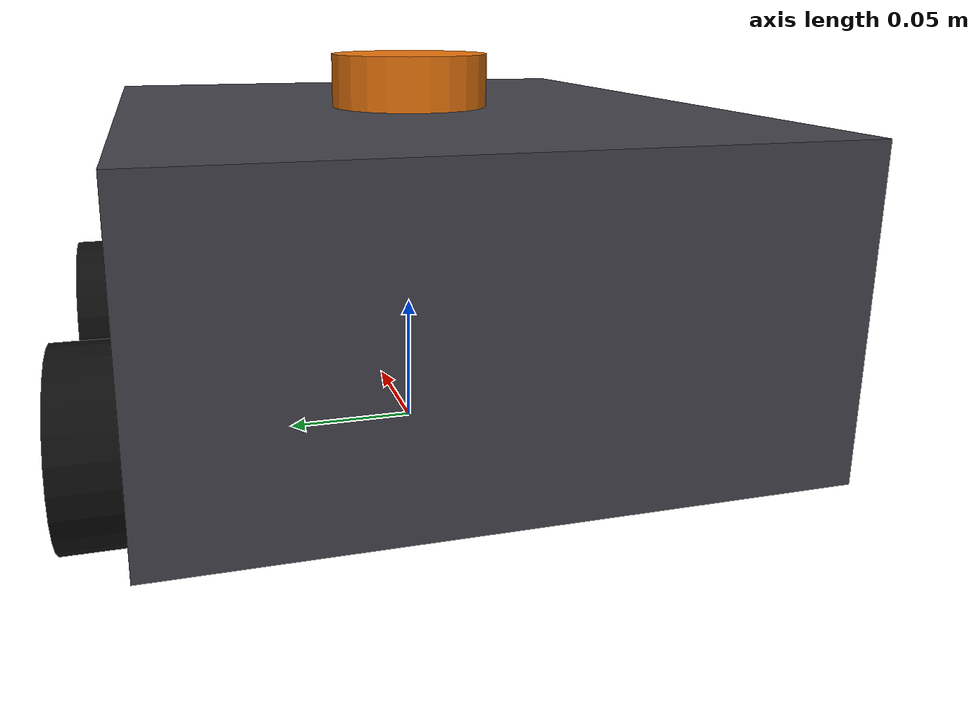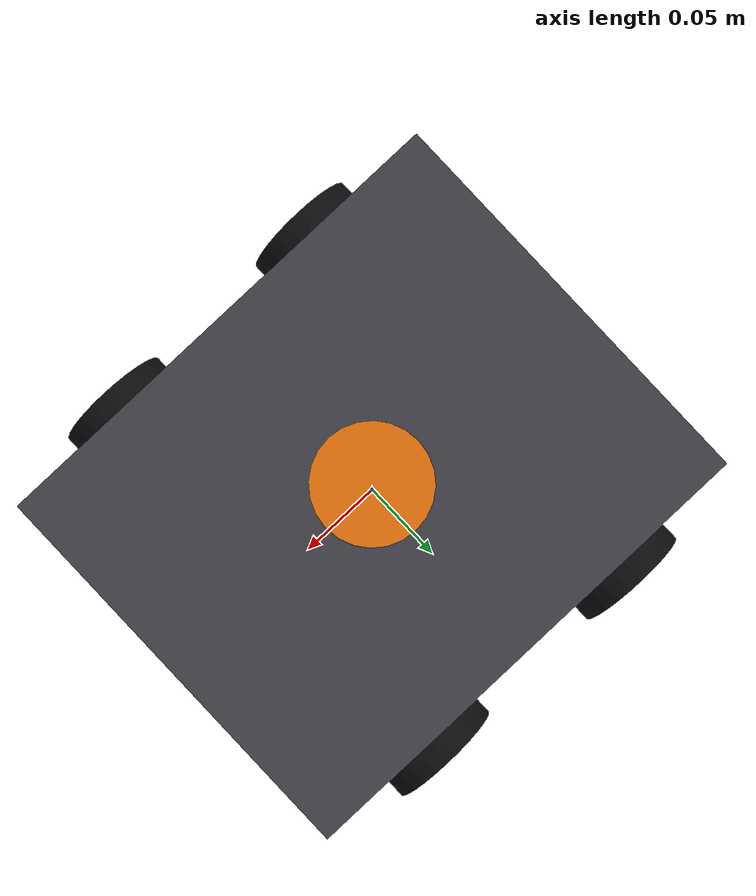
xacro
<?xml version="1.0"?>
<robot name="scout2map" xmlns:xacro="http://www.ros.org/wiki/xacro">

  <!-- ground clearance defines the gap below chassis -->
  <xacro:property name="ground_clearance" value="0.020"/>

  <!-- chassis dimensions -->
  <xacro:property name="chassis_length" value="0.265"/>
  <xacro:property name="chassis_width"  value="0.220"/>
  <!-- chassis height is 110mm to reach 130mm from ground -->
  <xacro:property name="chassis_height" value="0.110"/>
  <xacro:property name="chassis_mass"   value="1.8"/>

  <!-- chassis inertia recalculated for 110mm height -->
  <xacro:property name="chassis_ixx" value="0.009075"/>
  <xacro:property name="chassis_iyy" value="0.012349"/>
  <xacro:property name="chassis_izz" value="0.017794"/>

  <!-- wheel dimensions -->
  <xacro:property name="wheel_radius" value="0.033"/>
  <xacro:property name="wheel_width"  value="0.026"/>
  <xacro:property name="wheel_mass"   value="0.035"/>
  <xacro:property name="track_width"  value="0.240"/>
  <xacro:property name="wheel_base"   value="0.140"/>

  <!-- base_link is now on the ground -->
  <!-- wheel axle height is exactly the wheel radius -->
  <xacro:property name="wheel_axle_z" value="${wheel_radius}"/>

  <!-- wheel inertia -->
  <xacro:property name="wheel_izz_spin" value="0.0000191"/>
  <xacro:property name="wheel_ixx_perp" value="0.0000115"/>

  <!-- sensor offsets relative to the ground -->
  <!-- lidar sits on top of chassis at 130mm from ground -->
  <xacro:property name="lidar_offset_z" value="0.130"/>
  <!-- imu offset includes ground clearance -->
  <xacro:property name="imu_offset_z"   value="0.085"/>

  <!-- rotated using pi to fix orientation -->
  <xacro:property name="lidar_yaw_offset" value="3.14159265"/>

  <!-- materials -->
  <material name="chassis_gray"><color rgba="0.25 0.25 0.28 1.0"/></material>
  <material name="wheel_black"><color rgba="0.05 0.05 0.05 1.0"/></material>
  <material name="lidar_orange"><color rgba="0.90 0.45 0.05 1.0"/></material>
  <material name="imu_red"><color rgba="0.70 0.05 0.05 1.0"/></material>

  <!-- chassis body -->
  <!-- visual and collision are shifted up by ground clearance -->
  <link name="base_link">
    <visual>
      <origin xyz="0 0 ${ground_clearance + chassis_height/2}" rpy="0 0 0"/>
      <geometry><box size="${chassis_length} ${chassis_width} ${chassis_height}"/></geometry>
      <material name="chassis_gray"/>
    </visual>
    <collision>
      <origin xyz="0 0 ${ground_clearance + chassis_height/2}" rpy="0 0 0"/>
      <geometry><box size="${chassis_length} ${chassis_width} ${chassis_height}"/></geometry>
    </collision>
    <inertial>
      <origin xyz="0 0 ${ground_clearance + chassis_height/2}" rpy="0 0 0"/>
      <mass value="${chassis_mass}"/>
      <inertia ixx="${chassis_ixx}" iyy="${chassis_iyy}" izz="${chassis_izz}"
               ixy="0" ixz="0" iyz="0"/>
    </inertial>
  </link>

  <!-- wheel generator macro -->
  <xacro:macro name="wheel" params="prefix x_sign y_sign">
    <link name="${prefix}_wheel_link">
      <visual>
        <origin xyz="0 0 0" rpy="1.5708 0 0"/>
        <geometry><cylinder radius="${wheel_radius}" length="${wheel_width}"/></geometry>
        <material name="wheel_black"/>
      </visual>
      <collision>
        <origin xyz="0 0 0" rpy="1.5708 0 0"/>
        <geometry><cylinder radius="${wheel_radius}" length="${wheel_width}"/></geometry>
      </collision>
      <inertial>
        <origin xyz="0 0 0" rpy="1.5708 0 0"/>
        <mass value="${wheel_mass}"/>
        <inertia ixx="${wheel_ixx_perp}" iyy="${wheel_ixx_perp}" izz="${wheel_izz_spin}"
                 ixy="0" ixz="0" iyz="0"/>
      </inertial>
    </link>

    <joint name="${prefix}_wheel_joint" type="continuous">
      <parent link="base_link"/>
      <child link="${prefix}_wheel_link"/>
      <origin xyz="${x_sign*wheel_base/2} ${y_sign*track_width/2} ${wheel_axle_z}" rpy="0 0 0"/>
      <axis xyz="0 1 0"/>
    </joint>
  </xacro:macro>

  <!-- instantiate wheels -->
  <xacro:wheel prefix="front_left"  x_sign="1"  y_sign="1"/>
  <xacro:wheel prefix="front_right" x_sign="1"  y_sign="-1"/>
  <xacro:wheel prefix="rear_left"   x_sign="-1" y_sign="1"/>
  <xacro:wheel prefix="rear_right"  x_sign="-1" y_sign="-1"/>

  <!-- lidar link -->
  <link name="lidar_link">
    <visual>
      <geometry><cylinder radius="0.03" length="0.04"/></geometry>
      <material name="lidar_orange"/>
    </visual>
    <collision>
      <geometry><cylinder radius="0.03" length="0.04"/></geometry>
    </collision>
    <inertial>
      <mass value="0.06"/>
      <inertia ixx="0.00001" iyy="0.00001" izz="0.00001" ixy="0" ixz="0" iyz="0"/>
    </inertial>
  </link>

  <!-- lidar joint -->
  <joint name="lidar_joint" type="fixed">
    <parent link="base_link"/>
    <child link="lidar_link"/>
    <origin xyz="0 0 ${lidar_offset_z}" rpy="0 0 ${lidar_yaw_offset}"/>
  </joint>

  <!-- imu link -->
  <link name="imu_link">
    <visual>
      <geometry><box size="0.02 0.02 0.005"/></geometry>
      <material name="imu_red"/>
    </visual>
    <collision>
      <geometry><box size="0.02 0.02 0.005"/></geometry>
    </collision>
    <inertial>
      <mass value="0.005"/>
      <inertia ixx="0.000001" iyy="0.000001" izz="0.000001" ixy="0" ixz="0" iyz="0"/>
    </inertial>
  </link>

  <!-- imu joint -->
  <joint name="imu_joint" type="fixed">
    <parent link="base_link"/>
    <child link="imu_link"/>
    <origin xyz="0 0 ${imu_offset_z}" rpy="0 0 0"/>
  </joint>

  <!-- gazebo differential drive plugin -->
<gazebo>
    <plugin filename="gz-sim-diff-drive-system" name="gz::sim::systems::DiffDrive">
      <left_joint>front_left_wheel_joint</left_joint>
      <left_joint>rear_left_wheel_joint</left_joint>
      <right_joint>front_right_wheel_joint</right_joint>
      <right_joint>rear_right_wheel_joint</right_joint>
      <wheel_separation>${track_width}</wheel_separation>
      <wheel_radius>${wheel_radius}</wheel_radius>
      <odom_publish_frequency>30</odom_publish_frequency>
      <topic>cmd_vel</topic>
      <odom_topic>odom</odom_topic>

      <!-- disable direct tf broadcast -->
      <!-- allow ekf node to publish odom to base_link -->
      <publish_odom_tf>false</publish_odom_tf>

      <frame_id>odom</frame_id>
      <child_frame_id>base_link</child_frame_id>
    </plugin>
    <plugin filename="gz-sim-joint-state-publisher-system" name="gz::sim::systems::JointStatePublisher"/>
  </gazebo>

  <!-- gazebo rplidar sensor -->
  <gazebo reference="lidar_link">
    <sensor name="rplidar_c1" type="gpu_lidar">
      <pose>0 0 0 0 0 0</pose>
      <topic>scan</topic>
      <update_rate>10</update_rate>
      <lidar>
        <scan>
          <horizontal>
            <samples>360</samples>
            <resolution>1</resolution>
            <min_angle>0.0</min_angle>
            <max_angle>6.28318530718</max_angle>
          </horizontal>
        </scan>
        <range>
          <min>0.05</min>
          <max>12.0</max>
          <resolution>0.01</resolution>
        </range>
      </lidar>
      <always_on>true</always_on>
      <visualize>false</visualize>
    </sensor>
  </gazebo>

  <!-- gazebo imu sensor -->
  <gazebo reference="imu_link">
    <sensor name="bno055" type="imu">
      <topic>imu</topic>
      <update_rate>100</update_rate>
      <always_on>true</always_on>
    </sensor>
  </gazebo>

</robot>
